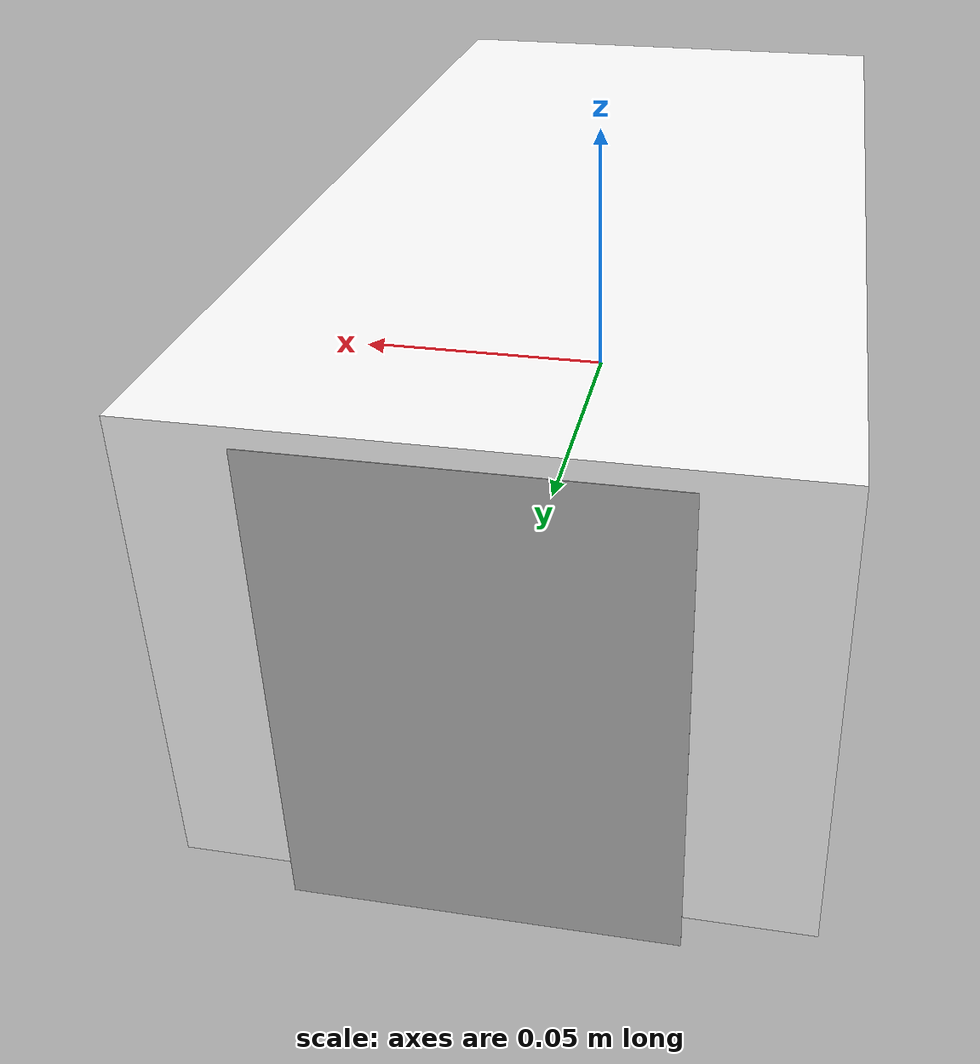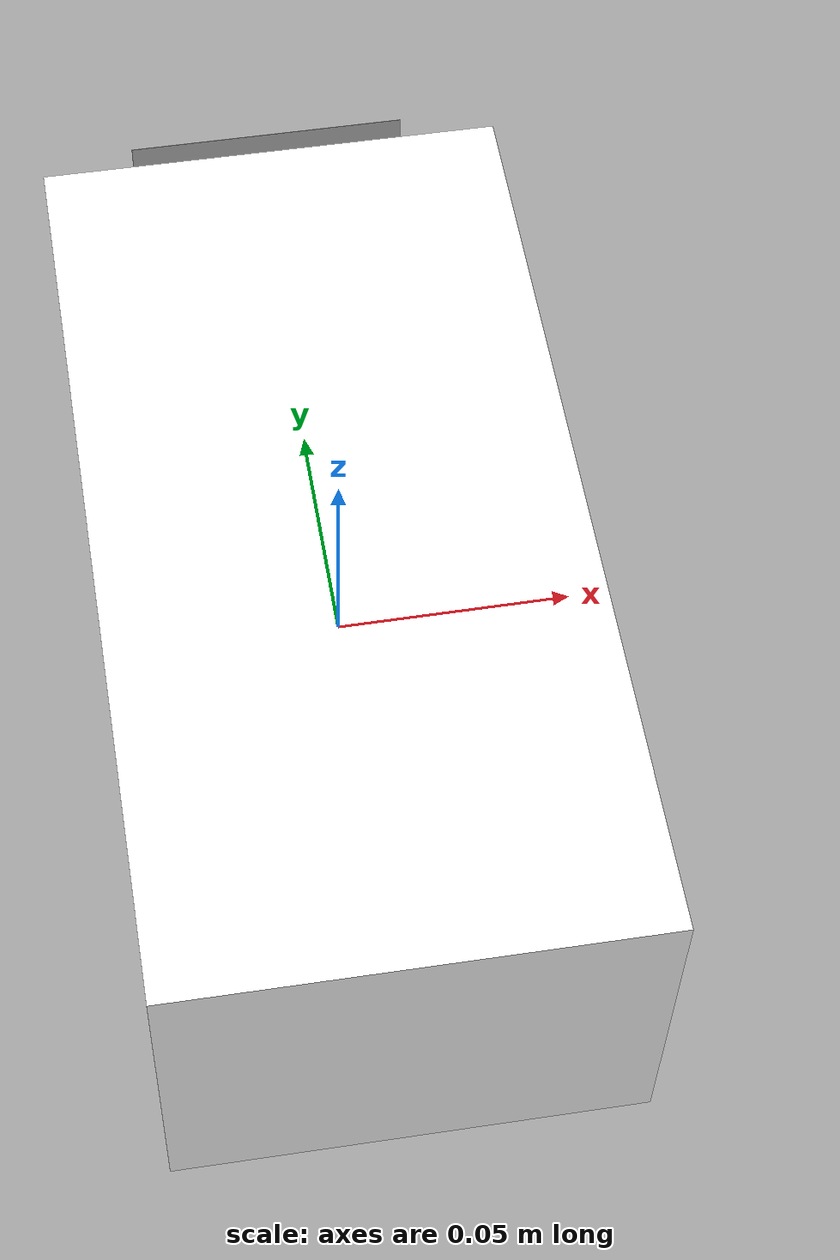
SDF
<?xml version="1.0"?>
<sdf version='1.4'>
  <model name="car2">
  <link name='car_body'>
    <pose>0 0 0 0 0 0</pose>
    <inertial>
      <inertia>
        <ixx>1e6</ixx>
        <ixy>0</ixy>
        <ixz>0</ixz>
        <iyy>1e6</iyy>
        <iyz>0</iyz>
        <izz>1e6</izz>
      </inertia>
      <mass>1e6</mass>
    </inertial>
    <collision name='collision'>
      <pose>0 0 0.04 0 0 0</pose>
      <geometry>
        <box>
          <size>0.1 0.2 0.08</size>
        </box>
      </geometry>
    </collision>
    <visual name='visual'>
      <geometry>
        <box>
          <size>0.1 0.2 0.08</size>
        </box>
      </geometry>
        <material>
          <ambient>0 0 1 1</ambient>
          <diffuse>1 1 1 1</diffuse>
          <specular>0 0.5 0 0</specular>
          <emissive>0 0 0 1</emissive>
        </material>
    </visual>
  </link>
  <link name='plate'>
    <pose>0 0.105 0 0 0 0</pose>R
    <inertial>
      <inertia>
        <ixx>1e6</ixx>
        <ixy>0</ixy>
        <ixz>0</ixz>
        <iyy>1e6</iyy>
        <iyz>0</iyz>
        <izz>1e6</izz>
      </inertia>
      <mass>1e6</mass>
    </inertial>
    <collision name='collision'>
      <pose>0 0 -2e6 0 0 0</pose>
      <geometry>
        <box>
          <size>1e-6 1e-6 1e-6</size>
        </box>
      </geometry>
    </collision>
    <visual name='visual'>
      <geometry>
        <box>
          <size>0.06 1e-4 0.08</size>
        </box>
      </geometry>
      <material>
        <script>
          <uri>file://materials/scripts</uri>
          <uri>file://materials/textures</uri>
          <name>car2</name>
        </script>
      </material>
    </visual>
  </link>
</model>
</sdf>
